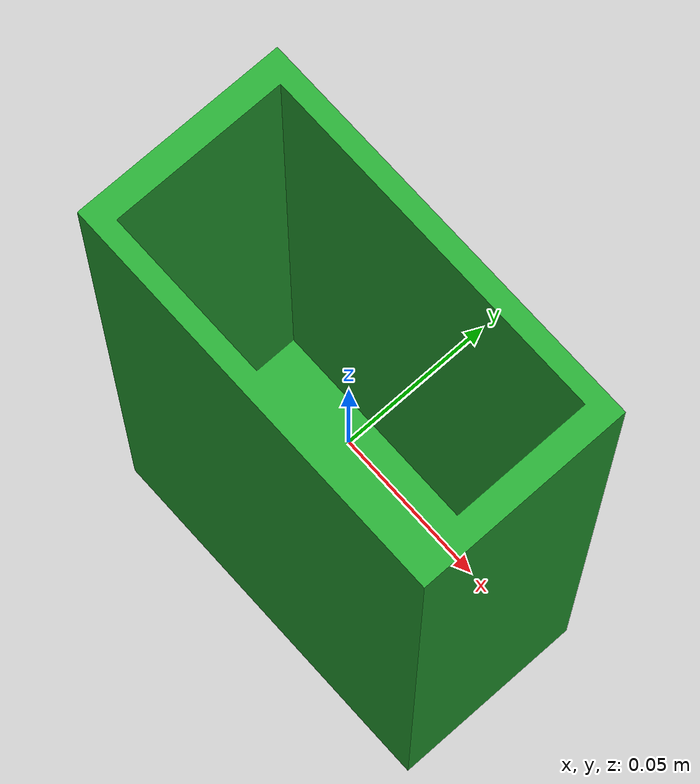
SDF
<?xml version='1.0'?>
<sdf version='1.6'>
  <model name='bag_insole'>
    <link name='link'>
      <inertial>
        <inertia>
          <ixx>0.005</ixx>
          <iyy>0.005</iyy>
          <izz>0.005</izz>
          <ixy>0</ixy>
          <ixz>0</ixz>
          <iyz>0</iyz>
        </inertia>
        <mass>2</mass>
      </inertial>
      <visual name='bag_insole_visual'>
        <pose frame=''>0 0 0 0 0 0</pose>
        <geometry>
          <mesh>
            <uri>model://bag_insole/bag_insole.stl</uri>
            <scale>0.8 0.6 1.4</scale>
          </mesh>
        </geometry>
        <material>
          <script>
            <uri>file://media/materials/scripts/gazebo.material</uri>
            <name>Gazebo/Green</name>
          </script>
        </material>
      </visual>
      <collision name='bag_insole_collision'>
        <pose frame=''>0 0 0 0 0 0</pose>
        <geometry>
          <mesh>
            <uri>model://bag_insole/bag_insole.stl</uri>
            <scale>0.8 0.6 1.4</scale>
          </mesh>
        </geometry>
        <surface>
          <friction>
            <ode>
              <mu>0.6</mu>
              <mu2>0.6</mu2>
            </ode>
          </friction>
        </surface>
      </collision>
    </link>

    <static>0</static>
    <allow_auto_disable>1</allow_auto_disable>
  </model>
</sdf>
